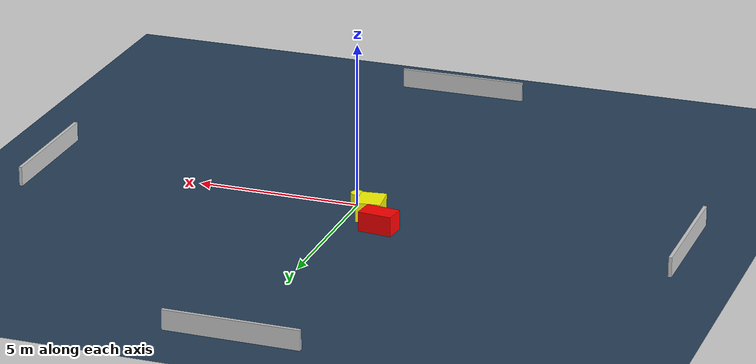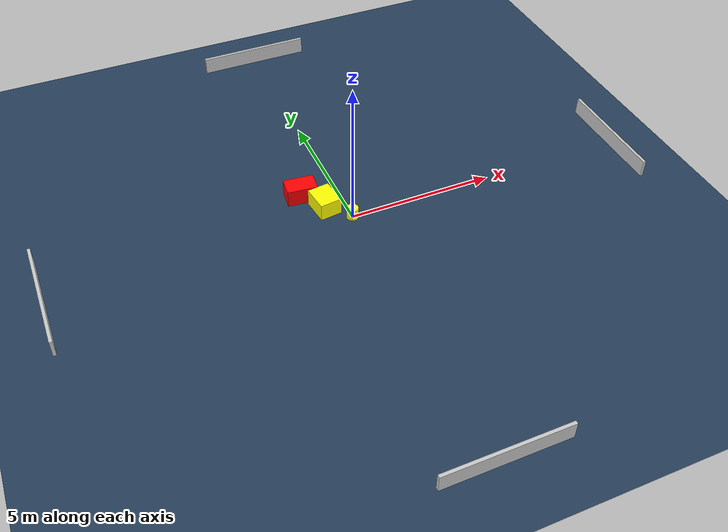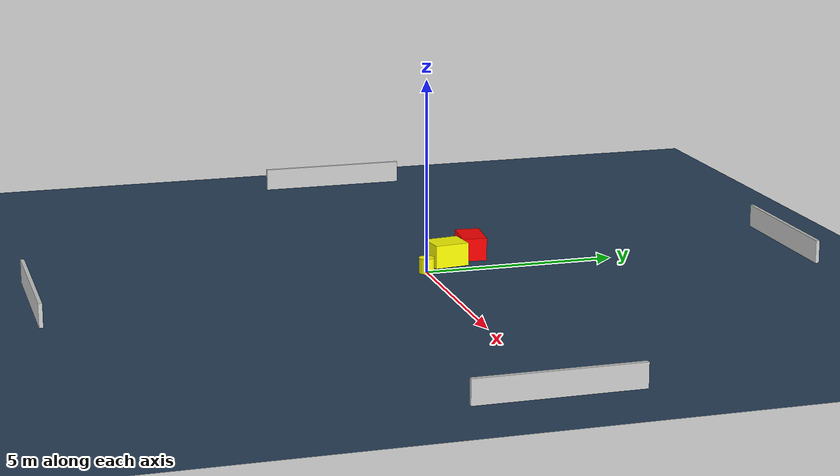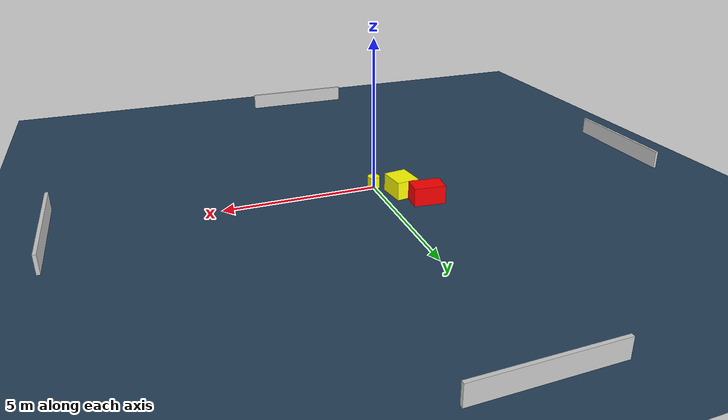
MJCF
<?xml version="1.0" ?>
<mujoco model="generated_environment">
  <option timestep="0.01" integrator="RK4" cone="elliptic"/>
  <default>
    <geom density="1"/>
  </default>
  <asset>
    <texture builtin="gradient" height="3072" name="skybox" rgb1="0.3 0.5 0.7" rgb2="0 0 0" type="skybox" width="512"/>
    <texture builtin="checker" height="300" name="groundplane" rgb1="0.2 0.3 0.4" rgb2="0.1 0.2 0.3" type="2d" width="300"/>
    <material name="groundplane" reflectance="0.2" texrepeat="5 5" texture="groundplane"/>
  </asset>
  <worldbody>
    <light dir="0 0 -1" directional="true" pos="0 0 1.5"/>
    <geom condim="3" friction="0.5 0.005 0.001" material="groundplane" name="floor" pos="0 0 0" size="0 0 0.05" type="plane"/>
    <body name="walls">
      <geom name="wall_1" condim="4" pos="-10.0 0.0 0.3" rgba="0.800000011920929 0.800000011920929 0.800000011920929 1.0" size="0.05 2.0 0.3" type="box"/>
      <geom name="wall_2" condim="4" pos="10.0 0.0 0.3" rgba="0.800000011920929 0.800000011920929 0.800000011920929 1.0" size="0.05 2.0 0.3" type="box"/>
      <geom name="wall_3" condim="4" pos="0.0 -10.0 0.3" rgba="0.800000011920929 0.800000011920929 0.800000011920929 1.0" size="2.0 0.05 0.3" type="box"/>
      <geom name="wall_4" condim="4" pos="0.0 10.0 0.3" rgba="0.800000011920929 0.800000011920929 0.800000011920929 1.0" size="2.0 0.05 0.3" type="box"/>
    </body>
    <body name="robot">
      <joint name="joint_x" type="slide" pos="0 0 0" axis="1 0 0"/>
      <joint name="joint_y" type="slide" pos="0 0 0" axis="0 1 0"/>
      <geom name="robot" type="cylinder" pos="0.0 0.0 0.2" size="0.2 0.2 0.0" mass="5.0" friction="1.0 0.005 0.0001" condim="4" rgba="1.0 1.0 0.0 1.0"/>
    </body>
    <body name="obstacle_1_movable">
      <geom name="obstacle_1_movable" condim="4" pos="-0.6811350851457415 0.7389321655844897 0.3" euler="0 0 97.1952251477011" friction="0.0 0.005 0.001" rgba="1.0 1.0 0.0 1.0" size="0.45333348111366734 0.3770884066545754 0.3" type="box" mass="0.1"/>
      <joint type="free"/>
    </body>
    <body name="obstacle_2_static">
      <geom name="obstacle_2_static" condim="4" pos="-1.2183432532974854 1.5663843134551827 0.3" euler="0 0 353.9765157689765" friction="0.0 0.005 0.001" rgba="1.0 0.0 0.0 1.0" size="0.5152399270729211 0.32388249686116766 0.3" type="box"/>
    </body>
  </worldbody>
  <actuator>
    <motor name="actuator_x" joint="joint_x" gear="1" ctrlrange="-1 1"/>
    <motor name="actuator_y" joint="joint_y" gear="1" ctrlrange="-1 1"/>
  </actuator>
</mujoco>
